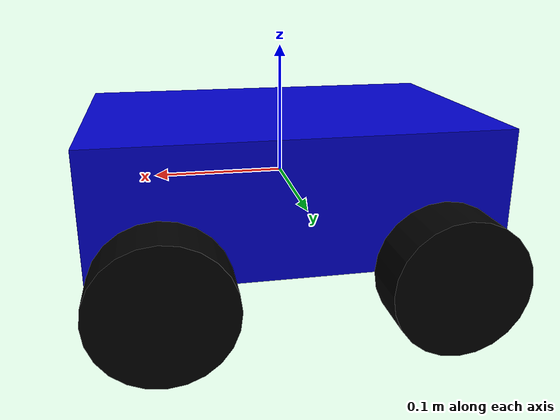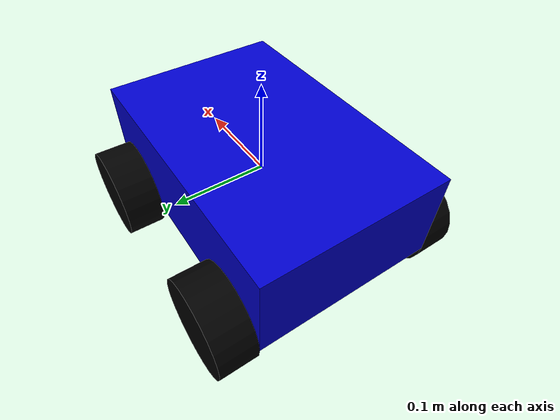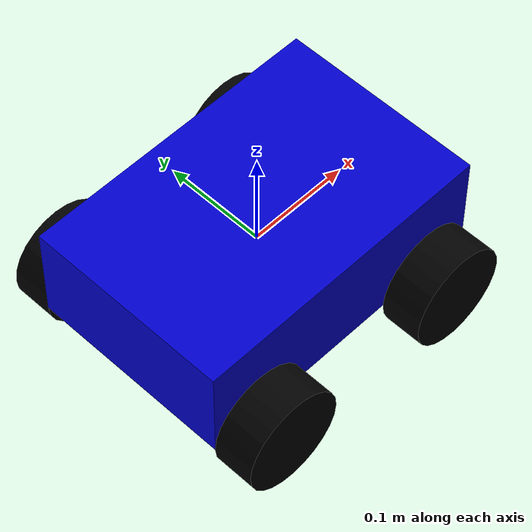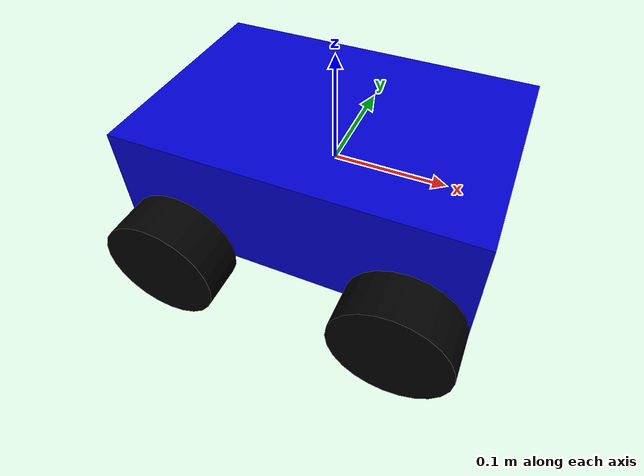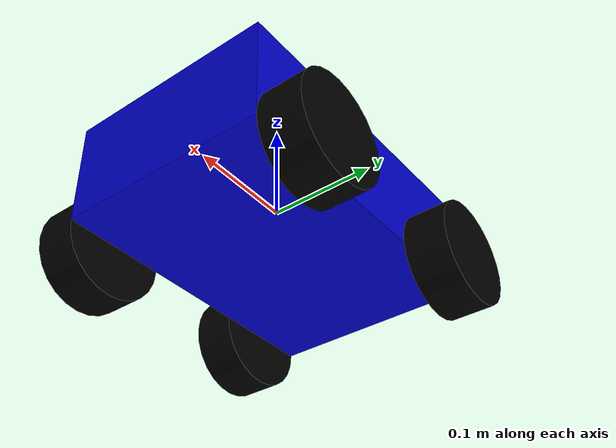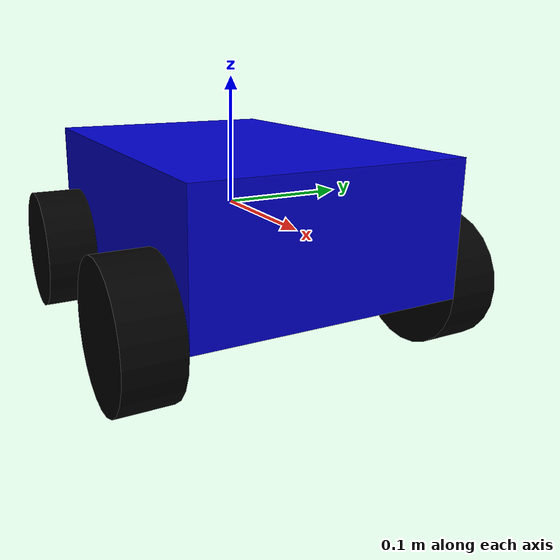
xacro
<?xml version="1.0"?>
<robot xmlns:xacro="http://www.ros.org/wiki/xacro" name="four_wheel_robot">

  <!-- Materials -->
  <material name="blue">
    <color rgba="0 0 0.8 1"/>
  </material>
  <material name="black">
    <color rgba="0 0 0 1"/>
  </material>

  <!-- Base Link -->
  <link name="base_link">
    <visual>
      <geometry>
        <box size="0.3 0.2 0.1"/>
      </geometry>
      <material name="blue"/>
    </visual>
    <collision>
      <geometry>
        <box size="0.3 0.2 0.1"/>
      </geometry>
    </collision>
    <inertial>
      <mass value="5.0"/>
      <inertia ixx="0.0208" ixy="0.0" ixz="0.0" iyy="0.0416" iyz="0.0" izz="0.0541"/>
    </inertial>
  </link>

  <!-- Macro for Wheels -->
  <xacro:macro name="wheel" params="prefix x_reflect y_reflect">
    <link name="${prefix}_wheel">
      <visual>
        <!-- Rotate the cylinder so it rolls correctly -->
        <origin xyz="0 0 0" rpy="${pi/2} 0 0"/>
        <geometry>
          <cylinder radius="0.05" length="0.04"/>
        </geometry>
        <material name="black"/>
      </visual>
      <collision>
        <origin xyz="0 0 0" rpy="${pi/2} 0 0"/>
        <geometry>
          <cylinder radius="0.05" length="0.04"/>
        </geometry>
      </collision>
      <inertial>
        <mass value="0.5"/>
        <inertia ixx="0.000379" ixy="0.0" ixz="0.0" iyy="0.000379" iyz="0.0" izz="0.000625"/>
      </inertial>
    </link>

    <joint name="${prefix}_wheel_joint" type="continuous">
      <parent link="base_link"/>
      <child link="${prefix}_wheel"/>
      <!-- Wheel offset from center: X +/- 0.1, Y +/- 0.12, Z -0.05 -->
      <origin xyz="${0.1 * x_reflect} ${0.12 * y_reflect} -0.05" rpy="0 0 0"/>
      <axis xyz="0 1 0"/>
    </joint>

    <gazebo reference="${prefix}_wheel">
      <material>Gazebo/Black</material>
      <mu1>1.0</mu1>
      <mu2>1.0</mu2>
    </gazebo>
  </xacro:macro>

  <!-- Create the 4 wheels -->
  <xacro:wheel prefix="front_left" x_reflect="1" y_reflect="1" />
  <xacro:wheel prefix="front_right" x_reflect="1" y_reflect="-1" />
  <xacro:wheel prefix="rear_left" x_reflect="-1" y_reflect="1" />
  <xacro:wheel prefix="rear_right" x_reflect="-1" y_reflect="-1" />

  <gazebo reference="base_link">
    <material>Gazebo/Blue</material>
  </gazebo>

  <!-- Gazebo Skid Steer Drive Plugin for 4-wheel robot -->
  <gazebo>
    <plugin name="skid_steer_drive_controller" filename="libgazebo_ros_diff_drive.so">
      <!-- ROS 2 Humble uses diff_drive plugin configured with 4 wheels for skid steer -->
      <ros>
        <namespace>/</namespace>
      </ros>

      <!-- Update rate in Hz -->
      <update_rate>50</update_rate>

      <!-- kinematics -->
      <num_wheel_pairs>2</num_wheel_pairs>

      <!-- Left and right wheel joints -->
      <left_joint>front_left_wheel_joint</left_joint>
      <left_joint>rear_left_wheel_joint</left_joint>
      <right_joint>front_right_wheel_joint</right_joint>
      <right_joint>rear_right_wheel_joint</right_joint>

      <!-- kinematics parameters -->
      <wheel_separation>0.24</wheel_separation>
      <wheel_separation>0.24</wheel_separation>
      <wheel_diameter>0.10</wheel_diameter>
      <wheel_diameter>0.10</wheel_diameter>

      <!-- limits -->
      <max_wheel_torque>20</max_wheel_torque>
      <max_wheel_torque>20</max_wheel_torque>
      <max_wheel_acceleration>1.0</max_wheel_acceleration>
      <max_wheel_acceleration>1.0</max_wheel_acceleration>

      <!-- output -->
      <publish_odom>true</publish_odom>
      <publish_odom_tf>true</publish_odom_tf>
      <publish_wheel_tf>true</publish_wheel_tf>

      <odometry_frame>odom</odometry_frame>
      <robot_base_frame>base_link</robot_base_frame>
    </plugin>
  </gazebo>

  <!-- Joint State Publisher for Gazebo -->
  <gazebo>
    <plugin name="gazebo_ros_joint_state_publisher" filename="libgazebo_ros_joint_state_publisher.so">
      <ros>
        <namespace>/</namespace>
      </ros>
      <update_rate>50</update_rate>
      <joint_name>front_left_wheel_joint</joint_name>
      <joint_name>front_right_wheel_joint</joint_name>
      <joint_name>rear_left_wheel_joint</joint_name>
      <joint_name>rear_right_wheel_joint</joint_name>
    </plugin>
  </gazebo>

</robot>
